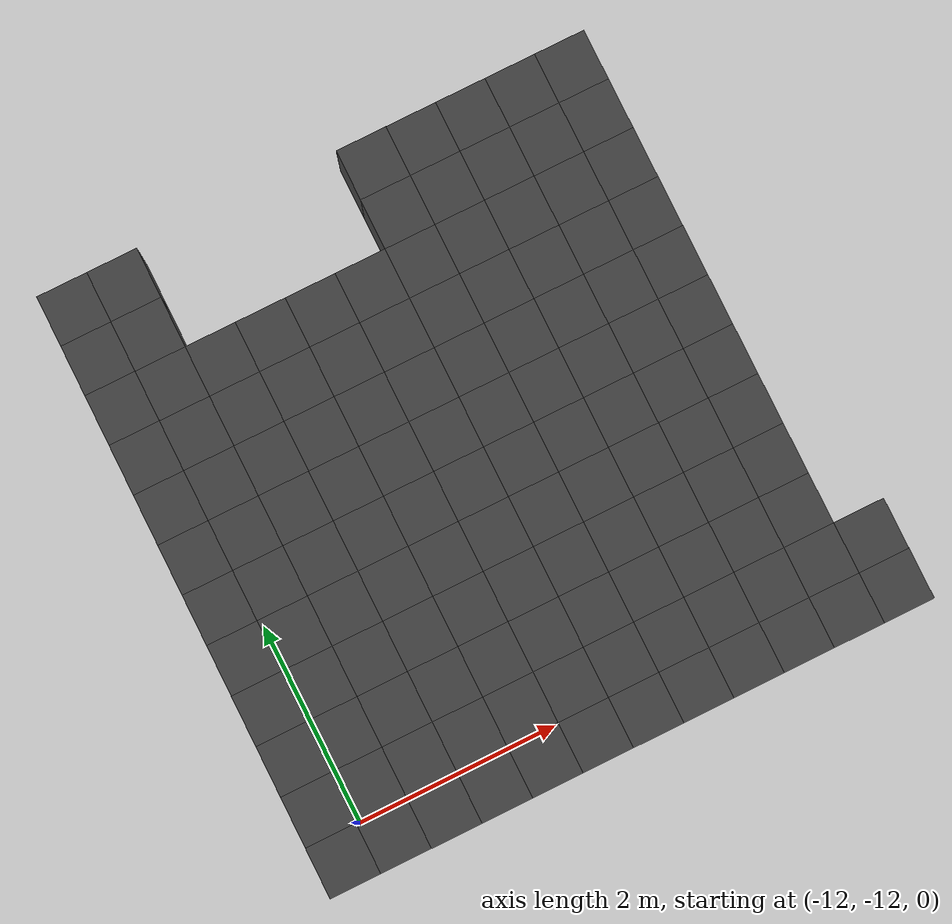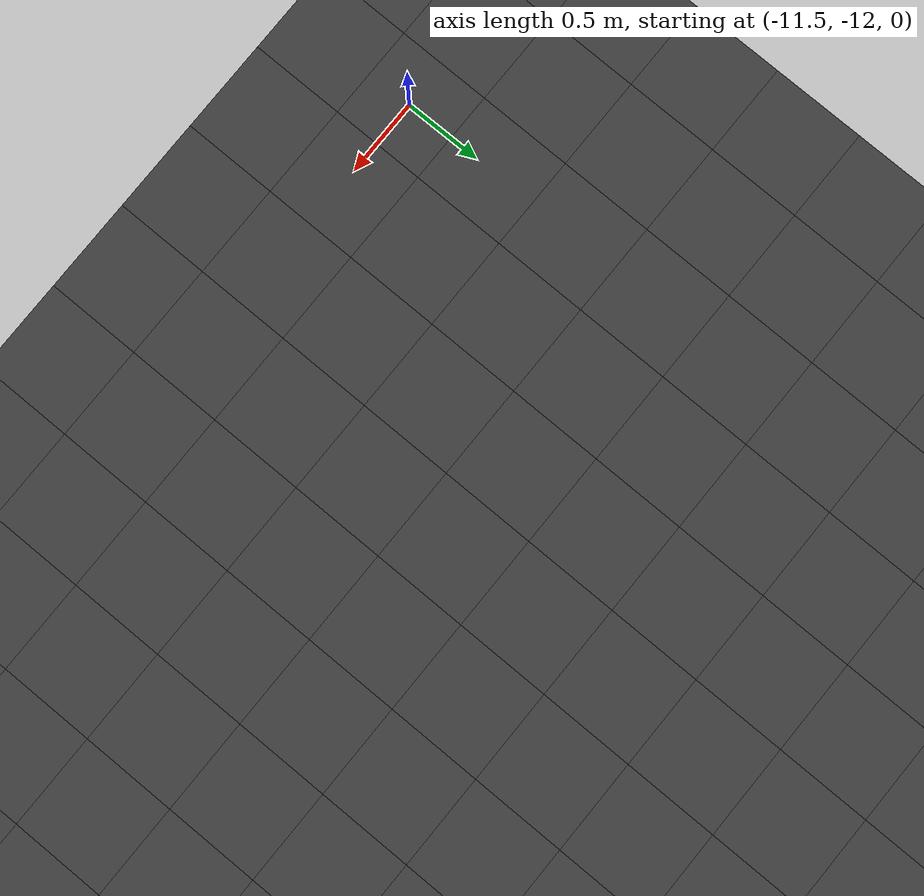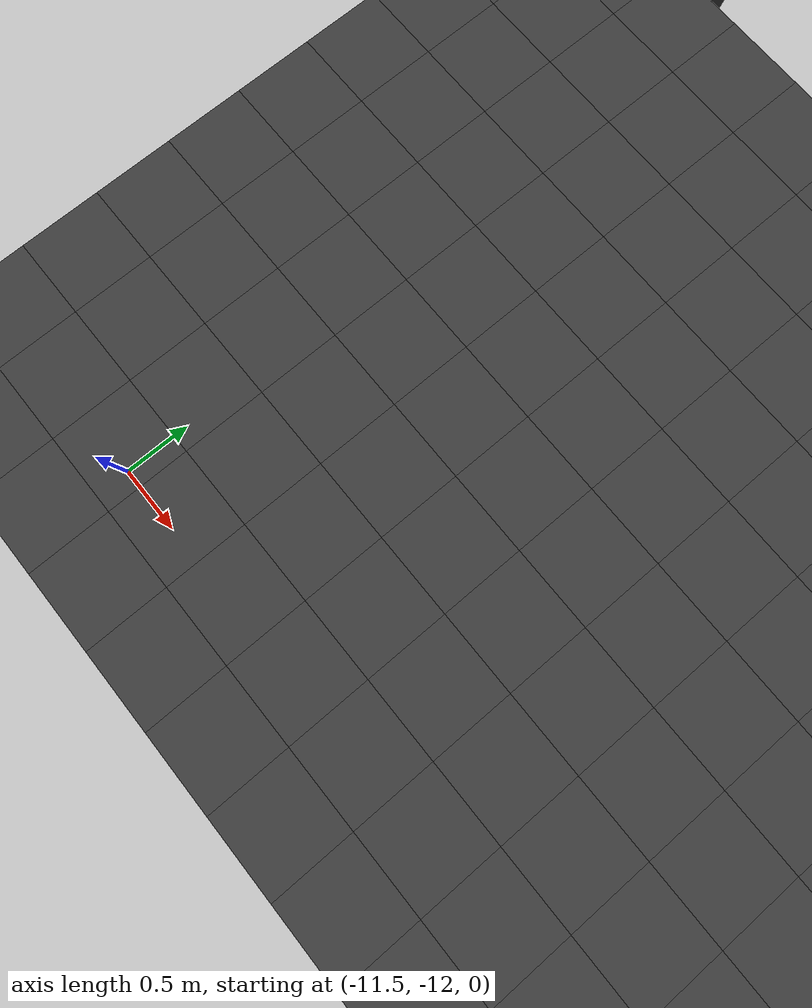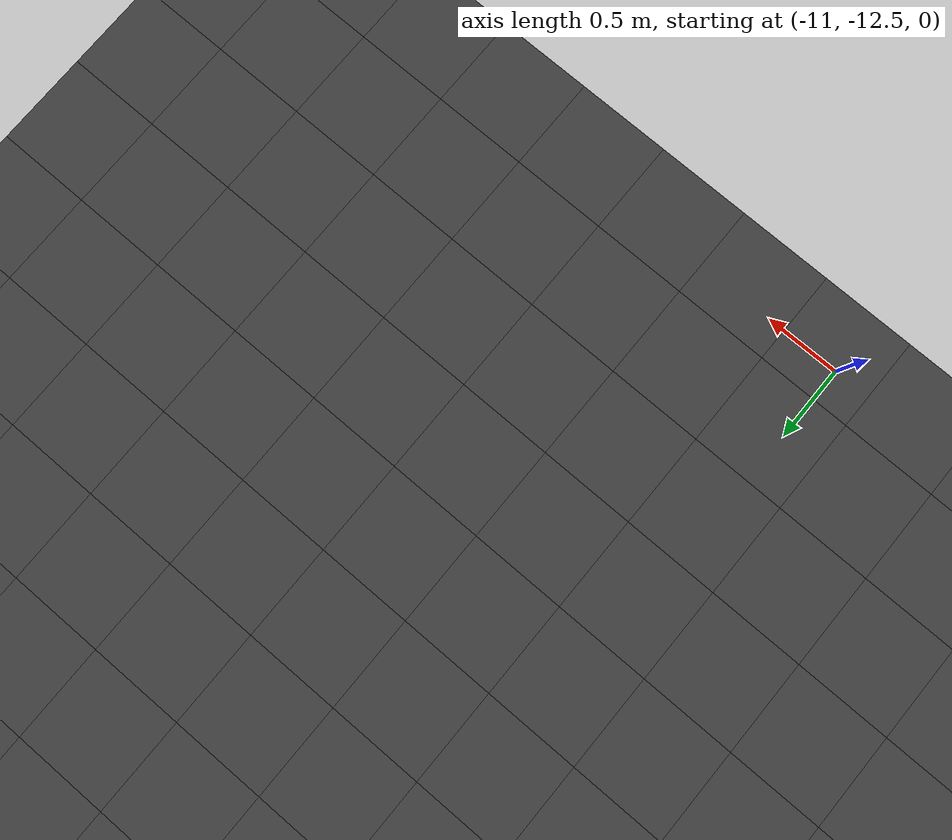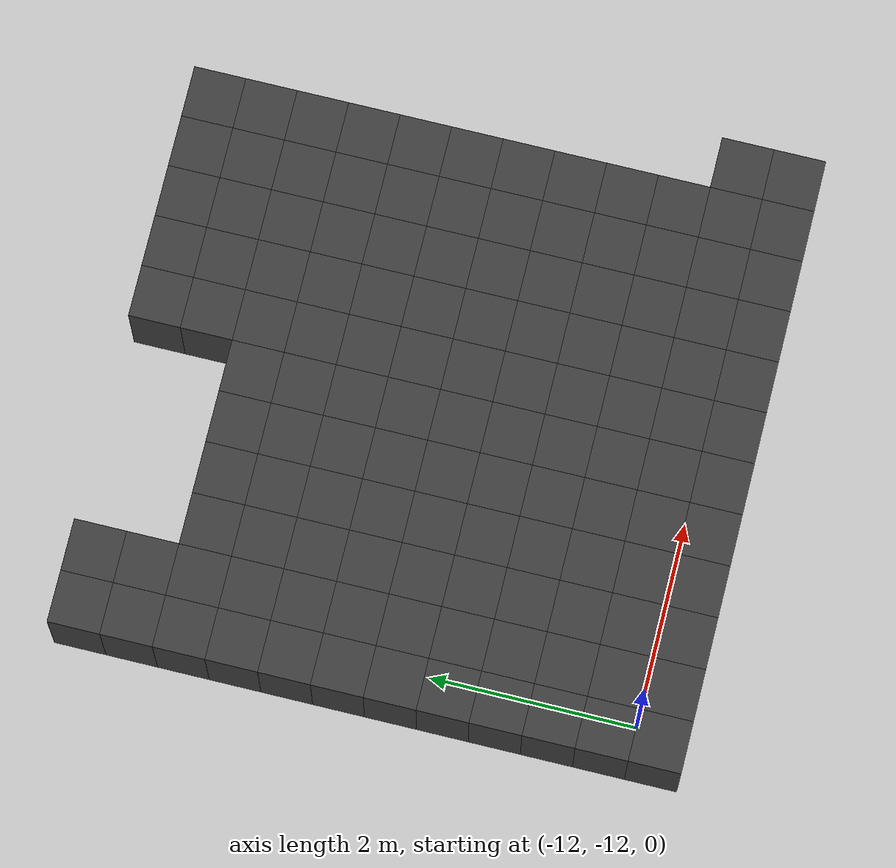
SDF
<sdf version="1.7">
 <world name="map_10777">
  <model name="ground_plane">
   <static>true</static>
   <link name="link">
    <collision name="collision">
     <geometry><plane><normal>0 0 1</normal><size>200 200</size></plane></geometry>
    </collision>
    <visual name="visual">
     <geometry><plane><normal>0 0 1</normal><size>200 200</size></plane></geometry>
     <material><ambient>0.8 0.8 0.8 1</ambient><diffuse>0.8 0.8 0.8 1</diffuse></material>
    </visual>
   </link>
  </model>
  <model name="maze_environment">
   <static>true</static>
   <link name="wall_1654">
    <pose>-12.250 -6.750 0.500 0 0 0</pose>
    <collision name="col"><geometry><box><size>0.5 0.5 1.0</size></box></geometry></collision>
    <visual name="vis">
     <geometry><box><size>0.5 0.5 1.0</size></box></geometry>
     <material><ambient>0.15 0.15 0.15 1</ambient><diffuse>0.25 0.25 0.25 1</diffuse></material>
    </visual>
   </link>
   <link name="wall_1655">
    <pose>-11.750 -6.750 0.500 0 0 0</pose>
    <collision name="col"><geometry><box><size>0.5 0.5 1.0</size></box></geometry></collision>
    <visual name="vis">
     <geometry><box><size>0.5 0.5 1.0</size></box></geometry>
     <material><ambient>0.15 0.15 0.15 1</ambient><diffuse>0.25 0.25 0.25 1</diffuse></material>
    </visual>
   </link>
   <link name="wall_1656">
    <pose>-9.250 -6.750 0.500 0 0 0</pose>
    <collision name="col"><geometry><box><size>0.5 0.5 1.0</size></box></geometry></collision>
    <visual name="vis">
     <geometry><box><size>0.5 0.5 1.0</size></box></geometry>
     <material><ambient>0.15 0.15 0.15 1</ambient><diffuse>0.25 0.25 0.25 1</diffuse></material>
    </visual>
   </link>
   <link name="wall_1657">
    <pose>-8.750 -6.750 0.500 0 0 0</pose>
    <collision name="col"><geometry><box><size>0.5 0.5 1.0</size></box></geometry></collision>
    <visual name="vis">
     <geometry><box><size>0.5 0.5 1.0</size></box></geometry>
     <material><ambient>0.15 0.15 0.15 1</ambient><diffuse>0.25 0.25 0.25 1</diffuse></material>
    </visual>
   </link>
   <link name="wall_1658">
    <pose>-8.250 -6.750 0.500 0 0 0</pose>
    <collision name="col"><geometry><box><size>0.5 0.5 1.0</size></box></geometry></collision>
    <visual name="vis">
     <geometry><box><size>0.5 0.5 1.0</size></box></geometry>
     <material><ambient>0.15 0.15 0.15 1</ambient><diffuse>0.25 0.25 0.25 1</diffuse></material>
    </visual>
   </link>
   <link name="wall_1659">
    <pose>-7.750 -6.750 0.500 0 0 0</pose>
    <collision name="col"><geometry><box><size>0.5 0.5 1.0</size></box></geometry></collision>
    <visual name="vis">
     <geometry><box><size>0.5 0.5 1.0</size></box></geometry>
     <material><ambient>0.15 0.15 0.15 1</ambient><diffuse>0.25 0.25 0.25 1</diffuse></material>
    </visual>
   </link>
   <link name="wall_1660">
    <pose>-7.250 -6.750 0.500 0 0 0</pose>
    <collision name="col"><geometry><box><size>0.5 0.5 1.0</size></box></geometry></collision>
    <visual name="vis">
     <geometry><box><size>0.5 0.5 1.0</size></box></geometry>
     <material><ambient>0.15 0.15 0.15 1</ambient><diffuse>0.25 0.25 0.25 1</diffuse></material>
    </visual>
   </link>
   <link name="wall_1693">
    <pose>-12.250 -7.250 0.500 0 0 0</pose>
    <collision name="col"><geometry><box><size>0.5 0.5 1.0</size></box></geometry></collision>
    <visual name="vis">
     <geometry><box><size>0.5 0.5 1.0</size></box></geometry>
     <material><ambient>0.15 0.15 0.15 1</ambient><diffuse>0.25 0.25 0.25 1</diffuse></material>
    </visual>
   </link>
   <link name="wall_1694">
    <pose>-11.750 -7.250 0.500 0 0 0</pose>
    <collision name="col"><geometry><box><size>0.5 0.5 1.0</size></box></geometry></collision>
    <visual name="vis">
     <geometry><box><size>0.5 0.5 1.0</size></box></geometry>
     <material><ambient>0.15 0.15 0.15 1</ambient><diffuse>0.25 0.25 0.25 1</diffuse></material>
    </visual>
   </link>
   <link name="wall_1695">
    <pose>-9.250 -7.250 0.500 0 0 0</pose>
    <collision name="col"><geometry><box><size>0.5 0.5 1.0</size></box></geometry></collision>
    <visual name="vis">
     <geometry><box><size>0.5 0.5 1.0</size></box></geometry>
     <material><ambient>0.15 0.15 0.15 1</ambient><diffuse>0.25 0.25 0.25 1</diffuse></material>
    </visual>
   </link>
   <link name="wall_1696">
    <pose>-8.750 -7.250 0.500 0 0 0</pose>
    <collision name="col"><geometry><box><size>0.5 0.5 1.0</size></box></geometry></collision>
    <visual name="vis">
     <geometry><box><size>0.5 0.5 1.0</size></box></geometry>
     <material><ambient>0.15 0.15 0.15 1</ambient><diffuse>0.25 0.25 0.25 1</diffuse></material>
    </visual>
   </link>
   <link name="wall_1697">
    <pose>-8.250 -7.250 0.500 0 0 0</pose>
    <collision name="col"><geometry><box><size>0.5 0.5 1.0</size></box></geometry></collision>
    <visual name="vis">
     <geometry><box><size>0.5 0.5 1.0</size></box></geometry>
     <material><ambient>0.15 0.15 0.15 1</ambient><diffuse>0.25 0.25 0.25 1</diffuse></material>
    </visual>
   </link>
   <link name="wall_1698">
    <pose>-7.750 -7.250 0.500 0 0 0</pose>
    <collision name="col"><geometry><box><size>0.5 0.5 1.0</size></box></geometry></collision>
    <visual name="vis">
     <geometry><box><size>0.5 0.5 1.0</size></box></geometry>
     <material><ambient>0.15 0.15 0.15 1</ambient><diffuse>0.25 0.25 0.25 1</diffuse></material>
    </visual>
   </link>
   <link name="wall_1699">
    <pose>-7.250 -7.250 0.500 0 0 0</pose>
    <collision name="col"><geometry><box><size>0.5 0.5 1.0</size></box></geometry></collision>
    <visual name="vis">
     <geometry><box><size>0.5 0.5 1.0</size></box></geometry>
     <material><ambient>0.15 0.15 0.15 1</ambient><diffuse>0.25 0.25 0.25 1</diffuse></material>
    </visual>
   </link>
   <link name="wall_1732">
    <pose>-12.250 -7.750 0.500 0 0 0</pose>
    <collision name="col"><geometry><box><size>0.5 0.5 1.0</size></box></geometry></collision>
    <visual name="vis">
     <geometry><box><size>0.5 0.5 1.0</size></box></geometry>
     <material><ambient>0.15 0.15 0.15 1</ambient><diffuse>0.25 0.25 0.25 1</diffuse></material>
    </visual>
   </link>
   <link name="wall_1733">
    <pose>-11.750 -7.750 0.500 0 0 0</pose>
    <collision name="col"><geometry><box><size>0.5 0.5 1.0</size></box></geometry></collision>
    <visual name="vis">
     <geometry><box><size>0.5 0.5 1.0</size></box></geometry>
     <material><ambient>0.15 0.15 0.15 1</ambient><diffuse>0.25 0.25 0.25 1</diffuse></material>
    </visual>
   </link>
   <link name="wall_1734">
    <pose>-11.250 -7.750 0.500 0 0 0</pose>
    <collision name="col"><geometry><box><size>0.5 0.5 1.0</size></box></geometry></collision>
    <visual name="vis">
     <geometry><box><size>0.5 0.5 1.0</size></box></geometry>
     <material><ambient>0.15 0.15 0.15 1</ambient><diffuse>0.25 0.25 0.25 1</diffuse></material>
    </visual>
   </link>
   <link name="wall_1735">
    <pose>-10.750 -7.750 0.500 0 0 0</pose>
    <collision name="col"><geometry><box><size>0.5 0.5 1.0</size></box></geometry></collision>
    <visual name="vis">
     <geometry><box><size>0.5 0.5 1.0</size></box></geometry>
     <material><ambient>0.15 0.15 0.15 1</ambient><diffuse>0.25 0.25 0.25 1</diffuse></material>
    </visual>
   </link>
   <link name="wall_1736">
    <pose>-10.250 -7.750 0.500 0 0 0</pose>
    <collision name="col"><geometry><box><size>0.5 0.5 1.0</size></box></geometry></collision>
    <visual name="vis">
     <geometry><box><size>0.5 0.5 1.0</size></box></geometry>
     <material><ambient>0.15 0.15 0.15 1</ambient><diffuse>0.25 0.25 0.25 1</diffuse></material>
    </visual>
   </link>
   <link name="wall_1737">
    <pose>-9.750 -7.750 0.500 0 0 0</pose>
    <collision name="col"><geometry><box><size>0.5 0.5 1.0</size></box></geometry></collision>
    <visual name="vis">
     <geometry><box><size>0.5 0.5 1.0</size></box></geometry>
     <material><ambient>0.15 0.15 0.15 1</ambient><diffuse>0.25 0.25 0.25 1</diffuse></material>
    </visual>
   </link>
   <link name="wall_1738">
    <pose>-9.250 -7.750 0.500 0 0 0</pose>
    <collision name="col"><geometry><box><size>0.5 0.5 1.0</size></box></geometry></collision>
    <visual name="vis">
     <geometry><box><size>0.5 0.5 1.0</size></box></geometry>
     <material><ambient>0.15 0.15 0.15 1</ambient><diffuse>0.25 0.25 0.25 1</diffuse></material>
    </visual>
   </link>
   <link name="wall_1739">
    <pose>-8.750 -7.750 0.500 0 0 0</pose>
    <collision name="col"><geometry><box><size>0.5 0.5 1.0</size></box></geometry></collision>
    <visual name="vis">
     <geometry><box><size>0.5 0.5 1.0</size></box></geometry>
     <material><ambient>0.15 0.15 0.15 1</ambient><diffuse>0.25 0.25 0.25 1</diffuse></material>
    </visual>
   </link>
   <link name="wall_1740">
    <pose>-8.250 -7.750 0.500 0 0 0</pose>
    <collision name="col"><geometry><box><size>0.5 0.5 1.0</size></box></geometry></collision>
    <visual name="vis">
     <geometry><box><size>0.5 0.5 1.0</size></box></geometry>
     <material><ambient>0.15 0.15 0.15 1</ambient><diffuse>0.25 0.25 0.25 1</diffuse></material>
    </visual>
   </link>
   <link name="wall_1741">
    <pose>-7.750 -7.750 0.500 0 0 0</pose>
    <collision name="col"><geometry><box><size>0.5 0.5 1.0</size></box></geometry></collision>
    <visual name="vis">
     <geometry><box><size>0.5 0.5 1.0</size></box></geometry>
     <material><ambient>0.15 0.15 0.15 1</ambient><diffuse>0.25 0.25 0.25 1</diffuse></material>
    </visual>
   </link>
   <link name="wall_1742">
    <pose>-7.250 -7.750 0.500 0 0 0</pose>
    <collision name="col"><geometry><box><size>0.5 0.5 1.0</size></box></geometry></collision>
    <visual name="vis">
     <geometry><box><size>0.5 0.5 1.0</size></box></geometry>
     <material><ambient>0.15 0.15 0.15 1</ambient><diffuse>0.25 0.25 0.25 1</diffuse></material>
    </visual>
   </link>
   <link name="wall_1774">
    <pose>-12.250 -8.250 0.500 0 0 0</pose>
    <collision name="col"><geometry><box><size>0.5 0.5 1.0</size></box></geometry></collision>
    <visual name="vis">
     <geometry><box><size>0.5 0.5 1.0</size></box></geometry>
     <material><ambient>0.15 0.15 0.15 1</ambient><diffuse>0.25 0.25 0.25 1</diffuse></material>
    </visual>
   </link>
   <link name="wall_1775">
    <pose>-11.750 -8.250 0.500 0 0 0</pose>
    <collision name="col"><geometry><box><size>0.5 0.5 1.0</size></box></geometry></collision>
    <visual name="vis">
     <geometry><box><size>0.5 0.5 1.0</size></box></geometry>
     <material><ambient>0.15 0.15 0.15 1</ambient><diffuse>0.25 0.25 0.25 1</diffuse></material>
    </visual>
   </link>
   <link name="wall_1776">
    <pose>-11.250 -8.250 0.500 0 0 0</pose>
    <collision name="col"><geometry><box><size>0.5 0.5 1.0</size></box></geometry></collision>
    <visual name="vis">
     <geometry><box><size>0.5 0.5 1.0</size></box></geometry>
     <material><ambient>0.15 0.15 0.15 1</ambient><diffuse>0.25 0.25 0.25 1</diffuse></material>
    </visual>
   </link>
   <link name="wall_1777">
    <pose>-10.750 -8.250 0.500 0 0 0</pose>
    <collision name="col"><geometry><box><size>0.5 0.5 1.0</size></box></geometry></collision>
    <visual name="vis">
     <geometry><box><size>0.5 0.5 1.0</size></box></geometry>
     <material><ambient>0.15 0.15 0.15 1</ambient><diffuse>0.25 0.25 0.25 1</diffuse></material>
    </visual>
   </link>
   <link name="wall_1778">
    <pose>-10.250 -8.250 0.500 0 0 0</pose>
    <collision name="col"><geometry><box><size>0.5 0.5 1.0</size></box></geometry></collision>
    <visual name="vis">
     <geometry><box><size>0.5 0.5 1.0</size></box></geometry>
     <material><ambient>0.15 0.15 0.15 1</ambient><diffuse>0.25 0.25 0.25 1</diffuse></material>
    </visual>
   </link>
   <link name="wall_1779">
    <pose>-9.750 -8.250 0.500 0 0 0</pose>
    <collision name="col"><geometry><box><size>0.5 0.5 1.0</size></box></geometry></collision>
    <visual name="vis">
     <geometry><box><size>0.5 0.5 1.0</size></box></geometry>
     <material><ambient>0.15 0.15 0.15 1</ambient><diffuse>0.25 0.25 0.25 1</diffuse></material>
    </visual>
   </link>
   <link name="wall_1780">
    <pose>-9.250 -8.250 0.500 0 0 0</pose>
    <collision name="col"><geometry><box><size>0.5 0.5 1.0</size></box></geometry></collision>
    <visual name="vis">
     <geometry><box><size>0.5 0.5 1.0</size></box></geometry>
     <material><ambient>0.15 0.15 0.15 1</ambient><diffuse>0.25 0.25 0.25 1</diffuse></material>
    </visual>
   </link>
   <link name="wall_1781">
    <pose>-8.750 -8.250 0.500 0 0 0</pose>
    <collision name="col"><geometry><box><size>0.5 0.5 1.0</size></box></geometry></collision>
    <visual name="vis">
     <geometry><box><size>0.5 0.5 1.0</size></box></geometry>
     <material><ambient>0.15 0.15 0.15 1</ambient><diffuse>0.25 0.25 0.25 1</diffuse></material>
    </visual>
   </link>
   <link name="wall_1782">
    <pose>-8.250 -8.250 0.500 0 0 0</pose>
    <collision name="col"><geometry><box><size>0.5 0.5 1.0</size></box></geometry></collision>
    <visual name="vis">
     <geometry><box><size>0.5 0.5 1.0</size></box></geometry>
     <material><ambient>0.15 0.15 0.15 1</ambient><diffuse>0.25 0.25 0.25 1</diffuse></material>
    </visual>
   </link>
   <link name="wall_1783">
    <pose>-7.750 -8.250 0.500 0 0 0</pose>
    <collision name="col"><geometry><box><size>0.5 0.5 1.0</size></box></geometry></collision>
    <visual name="vis">
     <geometry><box><size>0.5 0.5 1.0</size></box></geometry>
     <material><ambient>0.15 0.15 0.15 1</ambient><diffuse>0.25 0.25 0.25 1</diffuse></material>
    </visual>
   </link>
   <link name="wall_1784">
    <pose>-7.250 -8.250 0.500 0 0 0</pose>
    <collision name="col"><geometry><box><size>0.5 0.5 1.0</size></box></geometry></collision>
    <visual name="vis">
     <geometry><box><size>0.5 0.5 1.0</size></box></geometry>
     <material><ambient>0.15 0.15 0.15 1</ambient><diffuse>0.25 0.25 0.25 1</diffuse></material>
    </visual>
   </link>
   <link name="wall_1816">
    <pose>-12.250 -8.750 0.500 0 0 0</pose>
    <collision name="col"><geometry><box><size>0.5 0.5 1.0</size></box></geometry></collision>
    <visual name="vis">
     <geometry><box><size>0.5 0.5 1.0</size></box></geometry>
     <material><ambient>0.15 0.15 0.15 1</ambient><diffuse>0.25 0.25 0.25 1</diffuse></material>
    </visual>
   </link>
   <link name="wall_1817">
    <pose>-11.750 -8.750 0.500 0 0 0</pose>
    <collision name="col"><geometry><box><size>0.5 0.5 1.0</size></box></geometry></collision>
    <visual name="vis">
     <geometry><box><size>0.5 0.5 1.0</size></box></geometry>
     <material><ambient>0.15 0.15 0.15 1</ambient><diffuse>0.25 0.25 0.25 1</diffuse></material>
    </visual>
   </link>
   <link name="wall_1818">
    <pose>-11.250 -8.750 0.500 0 0 0</pose>
    <collision name="col"><geometry><box><size>0.5 0.5 1.0</size></box></geometry></collision>
    <visual name="vis">
     <geometry><box><size>0.5 0.5 1.0</size></box></geometry>
     <material><ambient>0.15 0.15 0.15 1</ambient><diffuse>0.25 0.25 0.25 1</diffuse></material>
    </visual>
   </link>
   <link name="wall_1819">
    <pose>-10.750 -8.750 0.500 0 0 0</pose>
    <collision name="col"><geometry><box><size>0.5 0.5 1.0</size></box></geometry></collision>
    <visual name="vis">
     <geometry><box><size>0.5 0.5 1.0</size></box></geometry>
     <material><ambient>0.15 0.15 0.15 1</ambient><diffuse>0.25 0.25 0.25 1</diffuse></material>
    </visual>
   </link>
   <link name="wall_1820">
    <pose>-10.250 -8.750 0.500 0 0 0</pose>
    <collision name="col"><geometry><box><size>0.5 0.5 1.0</size></box></geometry></collision>
    <visual name="vis">
     <geometry><box><size>0.5 0.5 1.0</size></box></geometry>
     <material><ambient>0.15 0.15 0.15 1</ambient><diffuse>0.25 0.25 0.25 1</diffuse></material>
    </visual>
   </link>
   <link name="wall_1821">
    <pose>-9.750 -8.750 0.500 0 0 0</pose>
    <collision name="col"><geometry><box><size>0.5 0.5 1.0</size></box></geometry></collision>
    <visual name="vis">
     <geometry><box><size>0.5 0.5 1.0</size></box></geometry>
     <material><ambient>0.15 0.15 0.15 1</ambient><diffuse>0.25 0.25 0.25 1</diffuse></material>
    </visual>
   </link>
   <link name="wall_1822">
    <pose>-9.250 -8.750 0.500 0 0 0</pose>
    <collision name="col"><geometry><box><size>0.5 0.5 1.0</size></box></geometry></collision>
    <visual name="vis">
     <geometry><box><size>0.5 0.5 1.0</size></box></geometry>
     <material><ambient>0.15 0.15 0.15 1</ambient><diffuse>0.25 0.25 0.25 1</diffuse></material>
    </visual>
   </link>
   <link name="wall_1823">
    <pose>-8.750 -8.750 0.500 0 0 0</pose>
    <collision name="col"><geometry><box><size>0.5 0.5 1.0</size></box></geometry></collision>
    <visual name="vis">
     <geometry><box><size>0.5 0.5 1.0</size></box></geometry>
     <material><ambient>0.15 0.15 0.15 1</ambient><diffuse>0.25 0.25 0.25 1</diffuse></material>
    </visual>
   </link>
   <link name="wall_1824">
    <pose>-8.250 -8.750 0.500 0 0 0</pose>
    <collision name="col"><geometry><box><size>0.5 0.5 1.0</size></box></geometry></collision>
    <visual name="vis">
     <geometry><box><size>0.5 0.5 1.0</size></box></geometry>
     <material><ambient>0.15 0.15 0.15 1</ambient><diffuse>0.25 0.25 0.25 1</diffuse></material>
    </visual>
   </link>
   <link name="wall_1825">
    <pose>-7.750 -8.750 0.500 0 0 0</pose>
    <collision name="col"><geometry><box><size>0.5 0.5 1.0</size></box></geometry></collision>
    <visual name="vis">
     <geometry><box><size>0.5 0.5 1.0</size></box></geometry>
     <material><ambient>0.15 0.15 0.15 1</ambient><diffuse>0.25 0.25 0.25 1</diffuse></material>
    </visual>
   </link>
   <link name="wall_1826">
    <pose>-7.250 -8.750 0.500 0 0 0</pose>
    <collision name="col"><geometry><box><size>0.5 0.5 1.0</size></box></geometry></collision>
    <visual name="vis">
     <geometry><box><size>0.5 0.5 1.0</size></box></geometry>
     <material><ambient>0.15 0.15 0.15 1</ambient><diffuse>0.25 0.25 0.25 1</diffuse></material>
    </visual>
   </link>
   <link name="wall_1858">
    <pose>-12.250 -9.250 0.500 0 0 0</pose>
    <collision name="col"><geometry><box><size>0.5 0.5 1.0</size></box></geometry></collision>
    <visual name="vis">
     <geometry><box><size>0.5 0.5 1.0</size></box></geometry>
     <material><ambient>0.15 0.15 0.15 1</ambient><diffuse>0.25 0.25 0.25 1</diffuse></material>
    </visual>
   </link>
   <link name="wall_1859">
    <pose>-11.750 -9.250 0.500 0 0 0</pose>
    <collision name="col"><geometry><box><size>0.5 0.5 1.0</size></box></geometry></collision>
    <visual name="vis">
     <geometry><box><size>0.5 0.5 1.0</size></box></geometry>
     <material><ambient>0.15 0.15 0.15 1</ambient><diffuse>0.25 0.25 0.25 1</diffuse></material>
    </visual>
   </link>
   <link name="wall_1860">
    <pose>-11.250 -9.250 0.500 0 0 0</pose>
    <collision name="col"><geometry><box><size>0.5 0.5 1.0</size></box></geometry></collision>
    <visual name="vis">
     <geometry><box><size>0.5 0.5 1.0</size></box></geometry>
     <material><ambient>0.15 0.15 0.15 1</ambient><diffuse>0.25 0.25 0.25 1</diffuse></material>
    </visual>
   </link>
   <link name="wall_1861">
    <pose>-10.750 -9.250 0.500 0 0 0</pose>
    <collision name="col"><geometry><box><size>0.5 0.5 1.0</size></box></geometry></collision>
    <visual name="vis">
     <geometry><box><size>0.5 0.5 1.0</size></box></geometry>
     <material><ambient>0.15 0.15 0.15 1</ambient><diffuse>0.25 0.25 0.25 1</diffuse></material>
    </visual>
   </link>
   <link name="wall_1862">
    <pose>-10.250 -9.250 0.500 0 0 0</pose>
    <collision name="col"><geometry><box><size>0.5 0.5 1.0</size></box></geometry></collision>
    <visual name="vis">
     <geometry><box><size>0.5 0.5 1.0</size></box></geometry>
     <material><ambient>0.15 0.15 0.15 1</ambient><diffuse>0.25 0.25 0.25 1</diffuse></material>
    </visual>
   </link>
   <link name="wall_1863">
    <pose>-9.750 -9.250 0.500 0 0 0</pose>
    <collision name="col"><geometry><box><size>0.5 0.5 1.0</size></box></geometry></collision>
    <visual name="vis">
     <geometry><box><size>0.5 0.5 1.0</size></box></geometry>
     <material><ambient>0.15 0.15 0.15 1</ambient><diffuse>0.25 0.25 0.25 1</diffuse></material>
    </visual>
   </link>
   <link name="wall_1864">
    <pose>-9.250 -9.250 0.500 0 0 0</pose>
    <collision name="col"><geometry><box><size>0.5 0.5 1.0</size></box></geometry></collision>
    <visual name="vis">
     <geometry><box><size>0.5 0.5 1.0</size></box></geometry>
     <material><ambient>0.15 0.15 0.15 1</ambient><diffuse>0.25 0.25 0.25 1</diffuse></material>
    </visual>
   </link>
   <link name="wall_1865">
    <pose>-8.750 -9.250 0.500 0 0 0</pose>
    <collision name="col"><geometry><box><size>0.5 0.5 1.0</size></box></geometry></collision>
    <visual name="vis">
     <geometry><box><size>0.5 0.5 1.0</size></box></geometry>
     <material><ambient>0.15 0.15 0.15 1</ambient><diffuse>0.25 0.25 0.25 1</diffuse></material>
    </visual>
   </link>
   <link name="wall_1866">
    <pose>-8.250 -9.250 0.500 0 0 0</pose>
    <collision name="col"><geometry><box><size>0.5 0.5 1.0</size></box></geometry></collision>
    <visual name="vis">
     <geometry><box><size>0.5 0.5 1.0</size></box></geometry>
     <material><ambient>0.15 0.15 0.15 1</ambient><diffuse>0.25 0.25 0.25 1</diffuse></material>
    </visual>
   </link>
   <link name="wall_1867">
    <pose>-7.750 -9.250 0.500 0 0 0</pose>
    <collision name="col"><geometry><box><size>0.5 0.5 1.0</size></box></geometry></collision>
    <visual name="vis">
     <geometry><box><size>0.5 0.5 1.0</size></box></geometry>
     <material><ambient>0.15 0.15 0.15 1</ambient><diffuse>0.25 0.25 0.25 1</diffuse></material>
    </visual>
   </link>
   <link name="wall_1868">
    <pose>-7.250 -9.250 0.500 0 0 0</pose>
    <collision name="col"><geometry><box><size>0.5 0.5 1.0</size></box></geometry></collision>
    <visual name="vis">
     <geometry><box><size>0.5 0.5 1.0</size></box></geometry>
     <material><ambient>0.15 0.15 0.15 1</ambient><diffuse>0.25 0.25 0.25 1</diffuse></material>
    </visual>
   </link>
   <link name="wall_1900">
    <pose>-12.250 -9.750 0.500 0 0 0</pose>
    <collision name="col"><geometry><box><size>0.5 0.5 1.0</size></box></geometry></collision>
    <visual name="vis">
     <geometry><box><size>0.5 0.5 1.0</size></box></geometry>
     <material><ambient>0.15 0.15 0.15 1</ambient><diffuse>0.25 0.25 0.25 1</diffuse></material>
    </visual>
   </link>
   <link name="wall_1901">
    <pose>-11.750 -9.750 0.500 0 0 0</pose>
    <collision name="col"><geometry><box><size>0.5 0.5 1.0</size></box></geometry></collision>
    <visual name="vis">
     <geometry><box><size>0.5 0.5 1.0</size></box></geometry>
     <material><ambient>0.15 0.15 0.15 1</ambient><diffuse>0.25 0.25 0.25 1</diffuse></material>
    </visual>
   </link>
   <link name="wall_1902">
    <pose>-11.250 -9.750 0.500 0 0 0</pose>
    <collision name="col"><geometry><box><size>0.5 0.5 1.0</size></box></geometry></collision>
    <visual name="vis">
     <geometry><box><size>0.5 0.5 1.0</size></box></geometry>
     <material><ambient>0.15 0.15 0.15 1</ambient><diffuse>0.25 0.25 0.25 1</diffuse></material>
    </visual>
   </link>
   <link name="wall_1903">
    <pose>-10.750 -9.750 0.500 0 0 0</pose>
    <collision name="col"><geometry><box><size>0.5 0.5 1.0</size></box></geometry></collision>
    <visual name="vis">
     <geometry><box><size>0.5 0.5 1.0</size></box></geometry>
     <material><ambient>0.15 0.15 0.15 1</ambient><diffuse>0.25 0.25 0.25 1</diffuse></material>
    </visual>
   </link>
   <link name="wall_1904">
    <pose>-10.250 -9.750 0.500 0 0 0</pose>
    <collision name="col"><geometry><box><size>0.5 0.5 1.0</size></box></geometry></collision>
    <visual name="vis">
     <geometry><box><size>0.5 0.5 1.0</size></box></geometry>
     <material><ambient>0.15 0.15 0.15 1</ambient><diffuse>0.25 0.25 0.25 1</diffuse></material>
    </visual>
   </link>
   <link name="wall_1905">
    <pose>-9.750 -9.750 0.500 0 0 0</pose>
    <collision name="col"><geometry><box><size>0.5 0.5 1.0</size></box></geometry></collision>
    <visual name="vis">
     <geometry><box><size>0.5 0.5 1.0</size></box></geometry>
     <material><ambient>0.15 0.15 0.15 1</ambient><diffuse>0.25 0.25 0.25 1</diffuse></material>
    </visual>
   </link>
   <link name="wall_1906">
    <pose>-9.250 -9.750 0.500 0 0 0</pose>
    <collision name="col"><geometry><box><size>0.5 0.5 1.0</size></box></geometry></collision>
    <visual name="vis">
     <geometry><box><size>0.5 0.5 1.0</size></box></geometry>
     <material><ambient>0.15 0.15 0.15 1</ambient><diffuse>0.25 0.25 0.25 1</diffuse></material>
    </visual>
   </link>
   <link name="wall_1907">
    <pose>-8.750 -9.750 0.500 0 0 0</pose>
    <collision name="col"><geometry><box><size>0.5 0.5 1.0</size></box></geometry></collision>
    <visual name="vis">
     <geometry><box><size>0.5 0.5 1.0</size></box></geometry>
     <material><ambient>0.15 0.15 0.15 1</ambient><diffuse>0.25 0.25 0.25 1</diffuse></material>
    </visual>
   </link>
   <link name="wall_1908">
    <pose>-8.250 -9.750 0.500 0 0 0</pose>
    <collision name="col"><geometry><box><size>0.5 0.5 1.0</size></box></geometry></collision>
    <visual name="vis">
     <geometry><box><size>0.5 0.5 1.0</size></box></geometry>
     <material><ambient>0.15 0.15 0.15 1</ambient><diffuse>0.25 0.25 0.25 1</diffuse></material>
    </visual>
   </link>
   <link name="wall_1909">
    <pose>-7.750 -9.750 0.500 0 0 0</pose>
    <collision name="col"><geometry><box><size>0.5 0.5 1.0</size></box></geometry></collision>
    <visual name="vis">
     <geometry><box><size>0.5 0.5 1.0</size></box></geometry>
     <material><ambient>0.15 0.15 0.15 1</ambient><diffuse>0.25 0.25 0.25 1</diffuse></material>
    </visual>
   </link>
   <link name="wall_1910">
    <pose>-7.250 -9.750 0.500 0 0 0</pose>
    <collision name="col"><geometry><box><size>0.5 0.5 1.0</size></box></geometry></collision>
    <visual name="vis">
     <geometry><box><size>0.5 0.5 1.0</size></box></geometry>
     <material><ambient>0.15 0.15 0.15 1</ambient><diffuse>0.25 0.25 0.25 1</diffuse></material>
    </visual>
   </link>
   <link name="wall_1941">
    <pose>-12.250 -10.250 0.500 0 0 0</pose>
    <collision name="col"><geometry><box><size>0.5 0.5 1.0</size></box></geometry></collision>
    <visual name="vis">
     <geometry><box><size>0.5 0.5 1.0</size></box></geometry>
     <material><ambient>0.15 0.15 0.15 1</ambient><diffuse>0.25 0.25 0.25 1</diffuse></material>
    </visual>
   </link>
   <link name="wall_1942">
    <pose>-11.750 -10.250 0.500 0 0 0</pose>
    <collision name="col"><geometry><box><size>0.5 0.5 1.0</size></box></geometry></collision>
    <visual name="vis">
     <geometry><box><size>0.5 0.5 1.0</size></box></geometry>
     <material><ambient>0.15 0.15 0.15 1</ambient><diffuse>0.25 0.25 0.25 1</diffuse></material>
    </visual>
   </link>
   <link name="wall_1943">
    <pose>-11.250 -10.250 0.500 0 0 0</pose>
    <collision name="col"><geometry><box><size>0.5 0.5 1.0</size></box></geometry></collision>
    <visual name="vis">
     <geometry><box><size>0.5 0.5 1.0</size></box></geometry>
     <material><ambient>0.15 0.15 0.15 1</ambient><diffuse>0.25 0.25 0.25 1</diffuse></material>
    </visual>
   </link>
   <link name="wall_1944">
    <pose>-10.750 -10.250 0.500 0 0 0</pose>
    <collision name="col"><geometry><box><size>0.5 0.5 1.0</size></box></geometry></collision>
    <visual name="vis">
     <geometry><box><size>0.5 0.5 1.0</size></box></geometry>
     <material><ambient>0.15 0.15 0.15 1</ambient><diffuse>0.25 0.25 0.25 1</diffuse></material>
    </visual>
   </link>
   <link name="wall_1945">
    <pose>-10.250 -10.250 0.500 0 0 0</pose>
    <collision name="col"><geometry><box><size>0.5 0.5 1.0</size></box></geometry></collision>
    <visual name="vis">
     <geometry><box><size>0.5 0.5 1.0</size></box></geometry>
     <material><ambient>0.15 0.15 0.15 1</ambient><diffuse>0.25 0.25 0.25 1</diffuse></material>
    </visual>
   </link>
   <link name="wall_1946">
    <pose>-9.750 -10.250 0.500 0 0 0</pose>
    <collision name="col"><geometry><box><size>0.5 0.5 1.0</size></box></geometry></collision>
    <visual name="vis">
     <geometry><box><size>0.5 0.5 1.0</size></box></geometry>
     <material><ambient>0.15 0.15 0.15 1</ambient><diffuse>0.25 0.25 0.25 1</diffuse></material>
    </visual>
   </link>
   <link name="wall_1947">
    <pose>-9.250 -10.250 0.500 0 0 0</pose>
    <collision name="col"><geometry><box><size>0.5 0.5 1.0</size></box></geometry></collision>
    <visual name="vis">
     <geometry><box><size>0.5 0.5 1.0</size></box></geometry>
     <material><ambient>0.15 0.15 0.15 1</ambient><diffuse>0.25 0.25 0.25 1</diffuse></material>
    </visual>
   </link>
   <link name="wall_1948">
    <pose>-8.750 -10.250 0.500 0 0 0</pose>
    <collision name="col"><geometry><box><size>0.5 0.5 1.0</size></box></geometry></collision>
    <visual name="vis">
     <geometry><box><size>0.5 0.5 1.0</size></box></geometry>
     <material><ambient>0.15 0.15 0.15 1</ambient><diffuse>0.25 0.25 0.25 1</diffuse></material>
    </visual>
   </link>
   <link name="wall_1949">
    <pose>-8.250 -10.250 0.500 0 0 0</pose>
    <collision name="col"><geometry><box><size>0.5 0.5 1.0</size></box></geometry></collision>
    <visual name="vis">
     <geometry><box><size>0.5 0.5 1.0</size></box></geometry>
     <material><ambient>0.15 0.15 0.15 1</ambient><diffuse>0.25 0.25 0.25 1</diffuse></material>
    </visual>
   </link>
   <link name="wall_1950">
    <pose>-7.750 -10.250 0.500 0 0 0</pose>
    <collision name="col"><geometry><box><size>0.5 0.5 1.0</size></box></geometry></collision>
    <visual name="vis">
     <geometry><box><size>0.5 0.5 1.0</size></box></geometry>
     <material><ambient>0.15 0.15 0.15 1</ambient><diffuse>0.25 0.25 0.25 1</diffuse></material>
    </visual>
   </link>
   <link name="wall_1951">
    <pose>-7.250 -10.250 0.500 0 0 0</pose>
    <collision name="col"><geometry><box><size>0.5 0.5 1.0</size></box></geometry></collision>
    <visual name="vis">
     <geometry><box><size>0.5 0.5 1.0</size></box></geometry>
     <material><ambient>0.15 0.15 0.15 1</ambient><diffuse>0.25 0.25 0.25 1</diffuse></material>
    </visual>
   </link>
   <link name="wall_1984">
    <pose>-12.250 -10.750 0.500 0 0 0</pose>
    <collision name="col"><geometry><box><size>0.5 0.5 1.0</size></box></geometry></collision>
    <visual name="vis">
     <geometry><box><size>0.5 0.5 1.0</size></box></geometry>
     <material><ambient>0.15 0.15 0.15 1</ambient><diffuse>0.25 0.25 0.25 1</diffuse></material>
    </visual>
   </link>
   <link name="wall_1985">
    <pose>-11.750 -10.750 0.500 0 0 0</pose>
    <collision name="col"><geometry><box><size>0.5 0.5 1.0</size></box></geometry></collision>
    <visual name="vis">
     <geometry><box><size>0.5 0.5 1.0</size></box></geometry>
     <material><ambient>0.15 0.15 0.15 1</ambient><diffuse>0.25 0.25 0.25 1</diffuse></material>
    </visual>
   </link>
   <link name="wall_1986">
    <pose>-11.250 -10.750 0.500 0 0 0</pose>
    <collision name="col"><geometry><box><size>0.5 0.5 1.0</size></box></geometry></collision>
    <visual name="vis">
     <geometry><box><size>0.5 0.5 1.0</size></box></geometry>
     <material><ambient>0.15 0.15 0.15 1</ambient><diffuse>0.25 0.25 0.25 1</diffuse></material>
    </visual>
   </link>
   <link name="wall_1987">
    <pose>-10.750 -10.750 0.500 0 0 0</pose>
    <collision name="col"><geometry><box><size>0.5 0.5 1.0</size></box></geometry></collision>
    <visual name="vis">
     <geometry><box><size>0.5 0.5 1.0</size></box></geometry>
     <material><ambient>0.15 0.15 0.15 1</ambient><diffuse>0.25 0.25 0.25 1</diffuse></material>
    </visual>
   </link>
   <link name="wall_1988">
    <pose>-10.250 -10.750 0.500 0 0 0</pose>
    <collision name="col"><geometry><box><size>0.5 0.5 1.0</size></box></geometry></collision>
    <visual name="vis">
     <geometry><box><size>0.5 0.5 1.0</size></box></geometry>
     <material><ambient>0.15 0.15 0.15 1</ambient><diffuse>0.25 0.25 0.25 1</diffuse></material>
    </visual>
   </link>
   <link name="wall_1989">
    <pose>-9.750 -10.750 0.500 0 0 0</pose>
    <collision name="col"><geometry><box><size>0.5 0.5 1.0</size></box></geometry></collision>
    <visual name="vis">
     <geometry><box><size>0.5 0.5 1.0</size></box></geometry>
     <material><ambient>0.15 0.15 0.15 1</ambient><diffuse>0.25 0.25 0.25 1</diffuse></material>
    </visual>
   </link>
   <link name="wall_1990">
    <pose>-9.250 -10.750 0.500 0 0 0</pose>
    <collision name="col"><geometry><box><size>0.5 0.5 1.0</size></box></geometry></collision>
    <visual name="vis">
     <geometry><box><size>0.5 0.5 1.0</size></box></geometry>
     <material><ambient>0.15 0.15 0.15 1</ambient><diffuse>0.25 0.25 0.25 1</diffuse></material>
    </visual>
   </link>
   <link name="wall_1991">
    <pose>-8.750 -10.750 0.500 0 0 0</pose>
    <collision name="col"><geometry><box><size>0.5 0.5 1.0</size></box></geometry></collision>
    <visual name="vis">
     <geometry><box><size>0.5 0.5 1.0</size></box></geometry>
     <material><ambient>0.15 0.15 0.15 1</ambient><diffuse>0.25 0.25 0.25 1</diffuse></material>
    </visual>
   </link>
   <link name="wall_1992">
    <pose>-8.250 -10.750 0.500 0 0 0</pose>
    <collision name="col"><geometry><box><size>0.5 0.5 1.0</size></box></geometry></collision>
    <visual name="vis">
     <geometry><box><size>0.5 0.5 1.0</size></box></geometry>
     <material><ambient>0.15 0.15 0.15 1</ambient><diffuse>0.25 0.25 0.25 1</diffuse></material>
    </visual>
   </link>
   <link name="wall_1993">
    <pose>-7.750 -10.750 0.500 0 0 0</pose>
    <collision name="col"><geometry><box><size>0.5 0.5 1.0</size></box></geometry></collision>
    <visual name="vis">
     <geometry><box><size>0.5 0.5 1.0</size></box></geometry>
     <material><ambient>0.15 0.15 0.15 1</ambient><diffuse>0.25 0.25 0.25 1</diffuse></material>
    </visual>
   </link>
   <link name="wall_1994">
    <pose>-7.250 -10.750 0.500 0 0 0</pose>
    <collision name="col"><geometry><box><size>0.5 0.5 1.0</size></box></geometry></collision>
    <visual name="vis">
     <geometry><box><size>0.5 0.5 1.0</size></box></geometry>
     <material><ambient>0.15 0.15 0.15 1</ambient><diffuse>0.25 0.25 0.25 1</diffuse></material>
    </visual>
   </link>
   <link name="wall_2024">
    <pose>-12.250 -11.250 0.500 0 0 0</pose>
    <collision name="col"><geometry><box><size>0.5 0.5 1.0</size></box></geometry></collision>
    <visual name="vis">
     <geometry><box><size>0.5 0.5 1.0</size></box></geometry>
     <material><ambient>0.15 0.15 0.15 1</ambient><diffuse>0.25 0.25 0.25 1</diffuse></material>
    </visual>
   </link>
   <link name="wall_2025">
    <pose>-11.750 -11.250 0.500 0 0 0</pose>
    <collision name="col"><geometry><box><size>0.5 0.5 1.0</size></box></geometry></collision>
    <visual name="vis">
     <geometry><box><size>0.5 0.5 1.0</size></box></geometry>
     <material><ambient>0.15 0.15 0.15 1</ambient><diffuse>0.25 0.25 0.25 1</diffuse></material>
    </visual>
   </link>
   <link name="wall_2026">
    <pose>-11.250 -11.250 0.500 0 0 0</pose>
    <collision name="col"><geometry><box><size>0.5 0.5 1.0</size></box></geometry></collision>
    <visual name="vis">
     <geometry><box><size>0.5 0.5 1.0</size></box></geometry>
     <material><ambient>0.15 0.15 0.15 1</ambient><diffuse>0.25 0.25 0.25 1</diffuse></material>
    </visual>
   </link>
   <link name="wall_2027">
    <pose>-10.750 -11.250 0.500 0 0 0</pose>
    <collision name="col"><geometry><box><size>0.5 0.5 1.0</size></box></geometry></collision>
    <visual name="vis">
     <geometry><box><size>0.5 0.5 1.0</size></box></geometry>
     <material><ambient>0.15 0.15 0.15 1</ambient><diffuse>0.25 0.25 0.25 1</diffuse></material>
    </visual>
   </link>
   <link name="wall_2028">
    <pose>-10.250 -11.250 0.500 0 0 0</pose>
    <collision name="col"><geometry><box><size>0.5 0.5 1.0</size></box></geometry></collision>
    <visual name="vis">
     <geometry><box><size>0.5 0.5 1.0</size></box></geometry>
     <material><ambient>0.15 0.15 0.15 1</ambient><diffuse>0.25 0.25 0.25 1</diffuse></material>
    </visual>
   </link>
   <link name="wall_2029">
    <pose>-9.750 -11.250 0.500 0 0 0</pose>
    <collision name="col"><geometry><box><size>0.5 0.5 1.0</size></box></geometry></collision>
    <visual name="vis">
     <geometry><box><size>0.5 0.5 1.0</size></box></geometry>
     <material><ambient>0.15 0.15 0.15 1</ambient><diffuse>0.25 0.25 0.25 1</diffuse></material>
    </visual>
   </link>
   <link name="wall_2030">
    <pose>-9.250 -11.250 0.500 0 0 0</pose>
    <collision name="col"><geometry><box><size>0.5 0.5 1.0</size></box></geometry></collision>
    <visual name="vis">
     <geometry><box><size>0.5 0.5 1.0</size></box></geometry>
     <material><ambient>0.15 0.15 0.15 1</ambient><diffuse>0.25 0.25 0.25 1</diffuse></material>
    </visual>
   </link>
   <link name="wall_2031">
    <pose>-8.750 -11.250 0.500 0 0 0</pose>
    <collision name="col"><geometry><box><size>0.5 0.5 1.0</size></box></geometry></collision>
    <visual name="vis">
     <geometry><box><size>0.5 0.5 1.0</size></box></geometry>
     <material><ambient>0.15 0.15 0.15 1</ambient><diffuse>0.25 0.25 0.25 1</diffuse></material>
    </visual>
   </link>
   <link name="wall_2032">
    <pose>-8.250 -11.250 0.500 0 0 0</pose>
    <collision name="col"><geometry><box><size>0.5 0.5 1.0</size></box></geometry></collision>
    <visual name="vis">
     <geometry><box><size>0.5 0.5 1.0</size></box></geometry>
     <material><ambient>0.15 0.15 0.15 1</ambient><diffuse>0.25 0.25 0.25 1</diffuse></material>
    </visual>
   </link>
   <link name="wall_2033">
    <pose>-7.750 -11.250 0.500 0 0 0</pose>
    <collision name="col"><geometry><box><size>0.5 0.5 1.0</size></box></geometry></collision>
    <visual name="vis">
     <geometry><box><size>0.5 0.5 1.0</size></box></geometry>
     <material><ambient>0.15 0.15 0.15 1</ambient><diffuse>0.25 0.25 0.25 1</diffuse></material>
    </visual>
   </link>
   <link name="wall_2034">
    <pose>-7.250 -11.250 0.500 0 0 0</pose>
    <collision name="col"><geometry><box><size>0.5 0.5 1.0</size></box></geometry></collision>
    <visual name="vis">
     <geometry><box><size>0.5 0.5 1.0</size></box></geometry>
     <material><ambient>0.15 0.15 0.15 1</ambient><diffuse>0.25 0.25 0.25 1</diffuse></material>
    </visual>
   </link>
   <link name="wall_2060">
    <pose>-12.250 -11.750 0.500 0 0 0</pose>
    <collision name="col"><geometry><box><size>0.5 0.5 1.0</size></box></geometry></collision>
    <visual name="vis">
     <geometry><box><size>0.5 0.5 1.0</size></box></geometry>
     <material><ambient>0.15 0.15 0.15 1</ambient><diffuse>0.25 0.25 0.25 1</diffuse></material>
    </visual>
   </link>
   <link name="wall_2061">
    <pose>-11.750 -11.750 0.500 0 0 0</pose>
    <collision name="col"><geometry><box><size>0.5 0.5 1.0</size></box></geometry></collision>
    <visual name="vis">
     <geometry><box><size>0.5 0.5 1.0</size></box></geometry>
     <material><ambient>0.15 0.15 0.15 1</ambient><diffuse>0.25 0.25 0.25 1</diffuse></material>
    </visual>
   </link>
   <link name="wall_2062">
    <pose>-11.250 -11.750 0.500 0 0 0</pose>
    <collision name="col"><geometry><box><size>0.5 0.5 1.0</size></box></geometry></collision>
    <visual name="vis">
     <geometry><box><size>0.5 0.5 1.0</size></box></geometry>
     <material><ambient>0.15 0.15 0.15 1</ambient><diffuse>0.25 0.25 0.25 1</diffuse></material>
    </visual>
   </link>
   <link name="wall_2063">
    <pose>-10.750 -11.750 0.500 0 0 0</pose>
    <collision name="col"><geometry><box><size>0.5 0.5 1.0</size></box></geometry></collision>
    <visual name="vis">
     <geometry><box><size>0.5 0.5 1.0</size></box></geometry>
     <material><ambient>0.15 0.15 0.15 1</ambient><diffuse>0.25 0.25 0.25 1</diffuse></material>
    </visual>
   </link>
   <link name="wall_2064">
    <pose>-10.250 -11.750 0.500 0 0 0</pose>
    <collision name="col"><geometry><box><size>0.5 0.5 1.0</size></box></geometry></collision>
    <visual name="vis">
     <geometry><box><size>0.5 0.5 1.0</size></box></geometry>
     <material><ambient>0.15 0.15 0.15 1</ambient><diffuse>0.25 0.25 0.25 1</diffuse></material>
    </visual>
   </link>
   <link name="wall_2065">
    <pose>-9.750 -11.750 0.500 0 0 0</pose>
    <collision name="col"><geometry><box><size>0.5 0.5 1.0</size></box></geometry></collision>
    <visual name="vis">
     <geometry><box><size>0.5 0.5 1.0</size></box></geometry>
     <material><ambient>0.15 0.15 0.15 1</ambient><diffuse>0.25 0.25 0.25 1</diffuse></material>
    </visual>
   </link>
   <link name="wall_2066">
    <pose>-9.250 -11.750 0.500 0 0 0</pose>
    <collision name="col"><geometry><box><size>0.5 0.5 1.0</size></box></geometry></collision>
    <visual name="vis">
     <geometry><box><size>0.5 0.5 1.0</size></box></geometry>
     <material><ambient>0.15 0.15 0.15 1</ambient><diffuse>0.25 0.25 0.25 1</diffuse></material>
    </visual>
   </link>
   <link name="wall_2067">
    <pose>-8.750 -11.750 0.500 0 0 0</pose>
    <collision name="col"><geometry><box><size>0.5 0.5 1.0</size></box></geometry></collision>
    <visual name="vis">
     <geometry><box><size>0.5 0.5 1.0</size></box></geometry>
     <material><ambient>0.15 0.15 0.15 1</ambient><diffuse>0.25 0.25 0.25 1</diffuse></material>
    </visual>
   </link>
   <link name="wall_2068">
    <pose>-8.250 -11.750 0.500 0 0 0</pose>
    <collision name="col"><geometry><box><size>0.5 0.5 1.0</size></box></geometry></collision>
    <visual name="vis">
     <geometry><box><size>0.5 0.5 1.0</size></box></geometry>
     <material><ambient>0.15 0.15 0.15 1</ambient><diffuse>0.25 0.25 0.25 1</diffuse></material>
    </visual>
   </link>
   <link name="wall_2069">
    <pose>-7.750 -11.750 0.500 0 0 0</pose>
    <collision name="col"><geometry><box><size>0.5 0.5 1.0</size></box></geometry></collision>
    <visual name="vis">
     <geometry><box><size>0.5 0.5 1.0</size></box></geometry>
     <material><ambient>0.15 0.15 0.15 1</ambient><diffuse>0.25 0.25 0.25 1</diffuse></material>
    </visual>
   </link>
   <link name="wall_2070">
    <pose>-7.250 -11.750 0.500 0 0 0</pose>
    <collision name="col"><geometry><box><size>0.5 0.5 1.0</size></box></geometry></collision>
    <visual name="vis">
     <geometry><box><size>0.5 0.5 1.0</size></box></geometry>
     <material><ambient>0.15 0.15 0.15 1</ambient><diffuse>0.25 0.25 0.25 1</diffuse></material>
    </visual>
   </link>
   <link name="wall_2071">
    <pose>-6.750 -11.750 0.500 0 0 0</pose>
    <collision name="col"><geometry><box><size>0.5 0.5 1.0</size></box></geometry></collision>
    <visual name="vis">
     <geometry><box><size>0.5 0.5 1.0</size></box></geometry>
     <material><ambient>0.15 0.15 0.15 1</ambient><diffuse>0.25 0.25 0.25 1</diffuse></material>
    </visual>
   </link>
   <link name="wall_2107">
    <pose>-12.250 -12.250 0.500 0 0 0</pose>
    <collision name="col"><geometry><box><size>0.5 0.5 1.0</size></box></geometry></collision>
    <visual name="vis">
     <geometry><box><size>0.5 0.5 1.0</size></box></geometry>
     <material><ambient>0.15 0.15 0.15 1</ambient><diffuse>0.25 0.25 0.25 1</diffuse></material>
    </visual>
   </link>
   <link name="wall_2108">
    <pose>-11.750 -12.250 0.500 0 0 0</pose>
    <collision name="col"><geometry><box><size>0.5 0.5 1.0</size></box></geometry></collision>
    <visual name="vis">
     <geometry><box><size>0.5 0.5 1.0</size></box></geometry>
     <material><ambient>0.15 0.15 0.15 1</ambient><diffuse>0.25 0.25 0.25 1</diffuse></material>
    </visual>
   </link>
   <link name="wall_2109">
    <pose>-11.250 -12.250 0.500 0 0 0</pose>
    <collision name="col"><geometry><box><size>0.5 0.5 1.0</size></box></geometry></collision>
    <visual name="vis">
     <geometry><box><size>0.5 0.5 1.0</size></box></geometry>
     <material><ambient>0.15 0.15 0.15 1</ambient><diffuse>0.25 0.25 0.25 1</diffuse></material>
    </visual>
   </link>
   <link name="wall_2110">
    <pose>-10.750 -12.250 0.500 0 0 0</pose>
    <collision name="col"><geometry><box><size>0.5 0.5 1.0</size></box></geometry></collision>
    <visual name="vis">
     <geometry><box><size>0.5 0.5 1.0</size></box></geometry>
     <material><ambient>0.15 0.15 0.15 1</ambient><diffuse>0.25 0.25 0.25 1</diffuse></material>
    </visual>
   </link>
   <link name="wall_2111">
    <pose>-10.250 -12.250 0.500 0 0 0</pose>
    <collision name="col"><geometry><box><size>0.5 0.5 1.0</size></box></geometry></collision>
    <visual name="vis">
     <geometry><box><size>0.5 0.5 1.0</size></box></geometry>
     <material><ambient>0.15 0.15 0.15 1</ambient><diffuse>0.25 0.25 0.25 1</diffuse></material>
    </visual>
   </link>
   <link name="wall_2112">
    <pose>-9.750 -12.250 0.500 0 0 0</pose>
    <collision name="col"><geometry><box><size>0.5 0.5 1.0</size></box></geometry></collision>
    <visual name="vis">
     <geometry><box><size>0.5 0.5 1.0</size></box></geometry>
     <material><ambient>0.15 0.15 0.15 1</ambient><diffuse>0.25 0.25 0.25 1</diffuse></material>
    </visual>
   </link>
   <link name="wall_2113">
    <pose>-9.250 -12.250 0.500 0 0 0</pose>
    <collision name="col"><geometry><box><size>0.5 0.5 1.0</size></box></geometry></collision>
    <visual name="vis">
     <geometry><box><size>0.5 0.5 1.0</size></box></geometry>
     <material><ambient>0.15 0.15 0.15 1</ambient><diffuse>0.25 0.25 0.25 1</diffuse></material>
    </visual>
   </link>
   <link name="wall_2114">
    <pose>-8.750 -12.250 0.500 0 0 0</pose>
    <collision name="col"><geometry><box><size>0.5 0.5 1.0</size></box></geometry></collision>
    <visual name="vis">
     <geometry><box><size>0.5 0.5 1.0</size></box></geometry>
     <material><ambient>0.15 0.15 0.15 1</ambient><diffuse>0.25 0.25 0.25 1</diffuse></material>
    </visual>
   </link>
   <link name="wall_2115">
    <pose>-8.250 -12.250 0.500 0 0 0</pose>
    <collision name="col"><geometry><box><size>0.5 0.5 1.0</size></box></geometry></collision>
    <visual name="vis">
     <geometry><box><size>0.5 0.5 1.0</size></box></geometry>
     <material><ambient>0.15 0.15 0.15 1</ambient><diffuse>0.25 0.25 0.25 1</diffuse></material>
    </visual>
   </link>
   <link name="wall_2116">
    <pose>-7.750 -12.250 0.500 0 0 0</pose>
    <collision name="col"><geometry><box><size>0.5 0.5 1.0</size></box></geometry></collision>
    <visual name="vis">
     <geometry><box><size>0.5 0.5 1.0</size></box></geometry>
     <material><ambient>0.15 0.15 0.15 1</ambient><diffuse>0.25 0.25 0.25 1</diffuse></material>
    </visual>
   </link>
   <link name="wall_2117">
    <pose>-7.250 -12.250 0.500 0 0 0</pose>
    <collision name="col"><geometry><box><size>0.5 0.5 1.0</size></box></geometry></collision>
    <visual name="vis">
     <geometry><box><size>0.5 0.5 1.0</size></box></geometry>
     <material><ambient>0.15 0.15 0.15 1</ambient><diffuse>0.25 0.25 0.25 1</diffuse></material>
    </visual>
   </link>
   <link name="wall_2118">
    <pose>-6.750 -12.250 0.500 0 0 0</pose>
    <collision name="col"><geometry><box><size>0.5 0.5 1.0</size></box></geometry></collision>
    <visual name="vis">
     <geometry><box><size>0.5 0.5 1.0</size></box></geometry>
     <material><ambient>0.15 0.15 0.15 1</ambient><diffuse>0.25 0.25 0.25 1</diffuse></material>
    </visual>
   </link>
  </model>
 </world>
</sdf>
